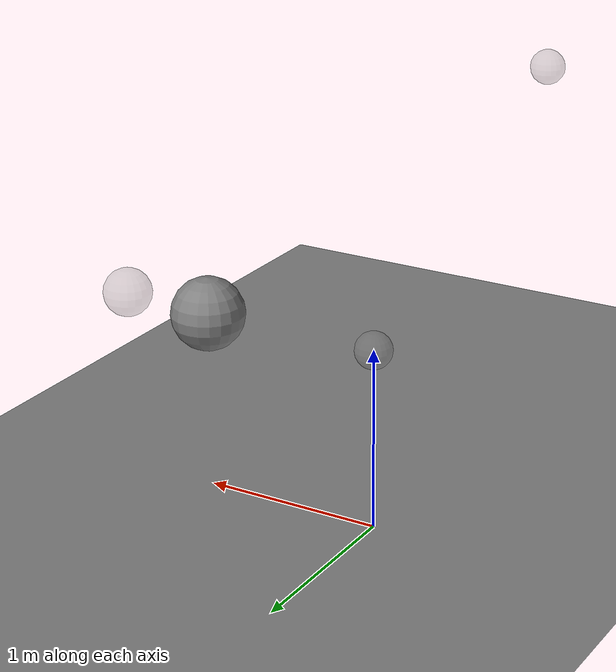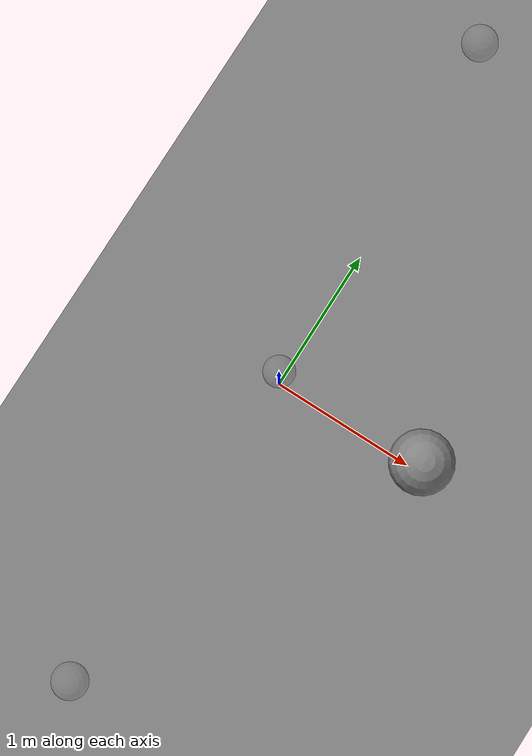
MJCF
<mujoco model="ray_caster_test">
  <compiler autolimits="true" />

  <extension>
    <plugin plugin="mujoco.sensor.ray_caster" />
    <plugin plugin="mujoco.sensor.ray_caster_camera" />
    <plugin plugin="mujoco.sensor.ray_caster_lidar" />
  </extension>

  <asset>
    <texture name="plane" type="2d" builtin="checker" rgb1=".1 .1 .1" rgb2=".9 .9 .9"
      width="512" height="512" mark="cross" markrgb=".8 .8 .8" />
    <material name="plane" reflectance="0.3" texture="plane" texrepeat="1 1" texuniform="true" />
  </asset>

  <visual>
    <headlight ambient=".7 .7 .7" diffuse=".2 .2 .2" specular="0.1 0.1 0.1" />
    <map znear="0.01" />
    <scale contactwidth=".02" contactheight=".5" />
  </visual>

  <worldbody>
    <geom name="floor" pos="0 0 0" size="0 0 .25" type="plane" material="plane"
      condim="3" />
    <light directional="true" ambient=".3 .3 .3" pos="30 30 30" dir="0 -.5 -1"
      diffuse=".5 .5 .5" specular=".5 .5 .5" />
    <body pos="0 0 1">
      <freejoint />
      <geom type="sphere" size=".1" rgba=".5 .5 .5 .3" />
      <camera name="RayCasterCamera" xyaxes="0 -1 0 0 0 1" />
    </body>
    <body pos="1 0 1">
      <freejoint />
      <geom type="sphere" size=".2" rgba=".5 .5 .5 .9" />
    </body>
    <body pos="0 2 2">
      <freejoint />
      <geom type="sphere" size=".1" rgba=".5 .5 .5 .3" />
      <camera name="RayCaster" />
    </body>

    <body pos="0 -2 2">
      <freejoint />
      <geom type="sphere" size=".1" rgba=".5 .5 .5 .3" />
      <camera name="RayCasterLidar" xyaxes="0 -1 0 0 0 1" />
    </body>
  </worldbody>

  <sensor>

    <plugin name="raycastercamera" plugin="mujoco.sensor.ray_caster_camera" objtype="camera"
      objname="RayCasterCamera">
      <config key="focal_length" value="11.41" />
      <config key="horizontal_aperture" value="20.995" />
      <config key="size" value="32 16" />
      <config key="dis_range" value="0.01 3" />
      <config key="vertical_aperture" value="12.64" />

      <config key="draw_deep_ray" value="1 5 0 1 1 0.5 1" />
      <config key="draw_deep_ray_ids" value="1 10 1 0 0 0.5 1 2 3 4 5 30" />
      <config key="draw_deep" value="1 5 0 1 0" />
      <config key="draw_hip_point" value="1 0.02" />

      <config key="sensor_data_types" value="image inv_image pos_w pos_b" />
      <config key="noise_type" value="uniform" />
      <config key="noise_cfg" value="-0.1 0.1 1" />

    </plugin>

    <plugin name="raycaster" plugin="mujoco.sensor.ray_caster" objtype="camera"
      objname="RayCaster">
      <config key="type" value="yaw" />
      <config key="resolution" value="0.2" />
      <config key="size" value="1.0 2.0" />
      <config key="dis_range" value="0.01 6" />

      <config key="draw_deep_ray" value="1 5 0 1 1 0.5 1" />
      <config key="draw_deep_ray_ids" value="1 10 1 0 0 0.5 1 2 3 4 5 30" />
      <config key="draw_deep" value="1 5 0 1 0" />
      <config key="draw_hip_point" value="1 0.02" />

      <config key="sensor_data_types" value="inv_image_noise image_noise" />
      <config key="noise_type" value="uniform" />
      <config key="noise_cfg" value="-0.1 0.1 1" />

    </plugin>

    <plugin name="raycasterlidar" plugin="mujoco.sensor.ray_caster_lidar" objtype="camera"
      objname="RayCasterLidar">
      <config key="fov_h" value="200" />
      <config key="fov_v" value="50" />
      <config key="size" value="100 50" />
      <config key="dis_range" value="0.01 6" />

      <config key="draw_deep_ray" value="1 5 0 1 1 0.5 1" />
      <config key="draw_hip_point" value="1 0.02" />

      <config key="sensor_data_types" value="inv_image_noise image_noise" />
      <config key="noise_type" value="uniform" />
      <config key="noise_cfg" value="-0.1 0.1 1" />

    </plugin>

  </sensor>
</mujoco>
